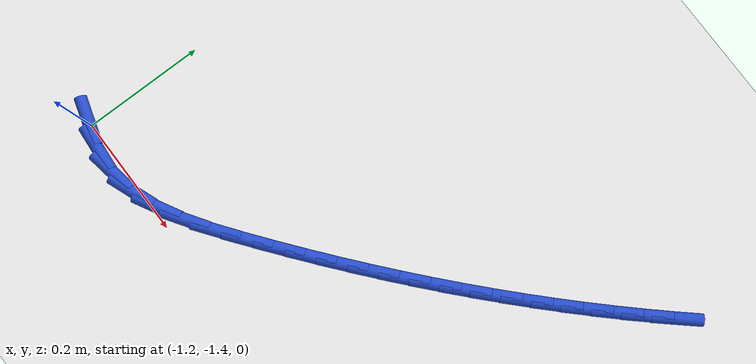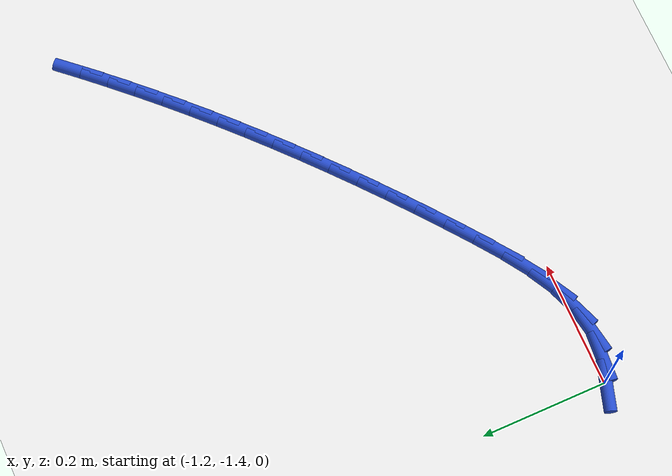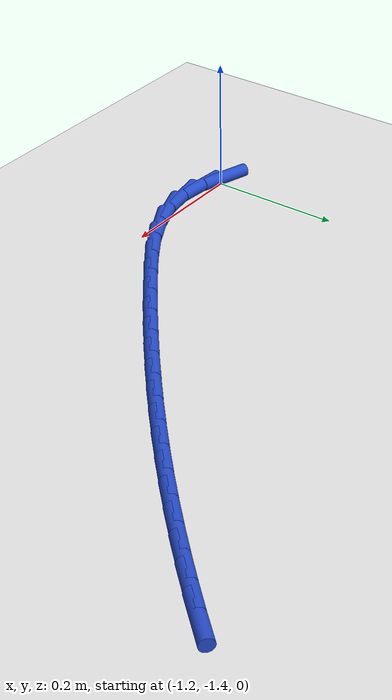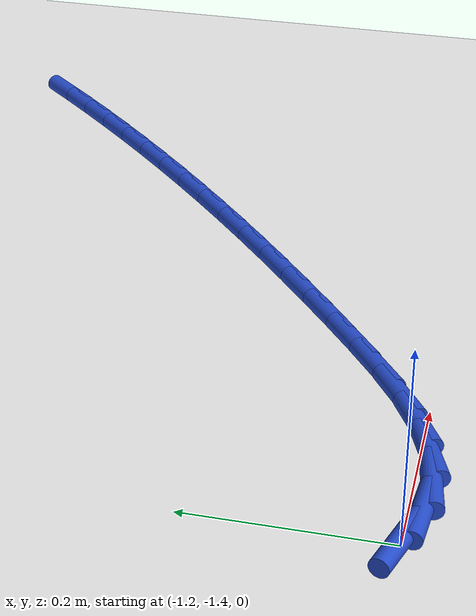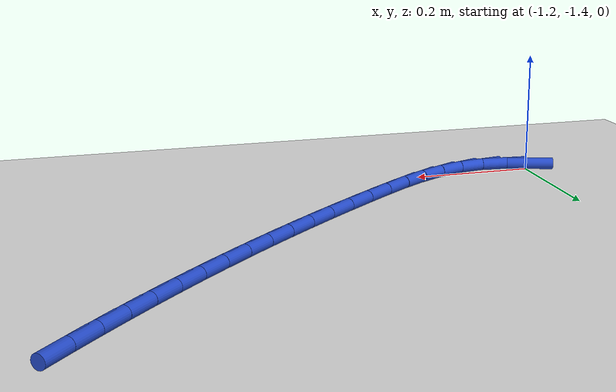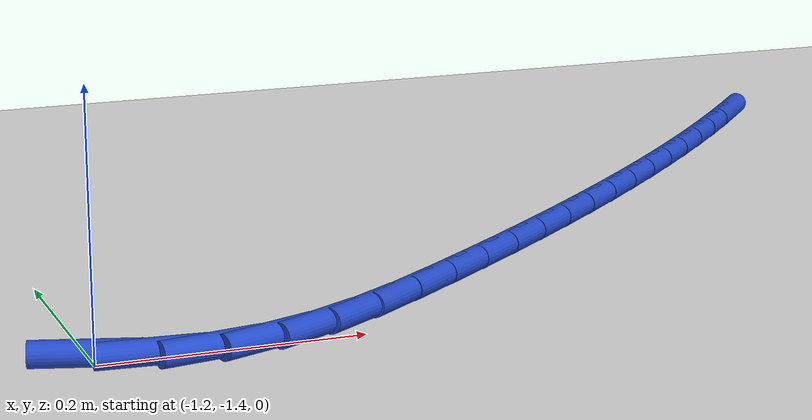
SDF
<sdf version="1.6">
 <world name="default">
  <model name="ground_plane">
   <static>1</static>
   <link name="link">
    <collision name="collision">
     <geometry><plane><normal>0 0 1</normal><size>100 100</size></plane></geometry>
     <surface><friction><ode><mu>100</mu><mu2>50</mu2></ode></friction></surface>
    </collision>
    <visual name="visual">
     <cast_shadows>0</cast_shadows>
     <geometry><plane><normal>0 0 1</normal><size>100 100</size></plane></geometry>
     <material>
      <script><uri>file://media/materials/scripts/gazebo.material</uri><name>Gazebo/WhiteGlow</name></script>
     </material>
    </visual>
   </link>
  </model>
  <model name="line">
   <link name="link_128">
    <pose>-1.2063194516684232 -1.3986927714140123 0.01 0 1.57 -0.2985976994086121</pose>
    <collision name="collision">
     <geometry><cylinder><radius>0.01</radius><length>0.08</length></cylinder></geometry>
    </collision>
    <visual name="visual">
     <material>
      <script><name>Gazebo/Blue</name><uri>file://media/materials/scripts/gazebo.material</uri></script>
     </material>
     <geometry><cylinder><radius>0.01</radius><length>0.08</length></cylinder></geometry>
    </visual>
   </link>
   <link name="link_129">
    <pose>-1.1631027434098096 -1.411994892781941 0.01 0 1.57 -0.08010083303607836</pose>
    <collision name="collision">
     <geometry><cylinder><radius>0.01</radius><length>0.08</length></cylinder></geometry>
    </collision>
    <visual name="visual">
     <material>
      <script><name>Gazebo/Blue</name><uri>file://media/materials/scripts/gazebo.material</uri></script>
     </material>
     <geometry><cylinder><radius>0.01</radius><length>0.08</length></cylinder></geometry>
    </visual>
   </link>
   <link name="link_130">
    <pose>-1.1197835836851573 -1.4154722337849648 0.01 0 1.57 0.16618923246896103</pose>
    <collision name="collision">
     <geometry><cylinder><radius>0.01</radius><length>0.08</length></cylinder></geometry>
    </collision>
    <visual name="visual">
     <material>
      <script><name>Gazebo/Blue</name><uri>file://media/materials/scripts/gazebo.material</uri></script>
     </material>
     <geometry><cylinder><radius>0.01</radius><length>0.08</length></cylinder></geometry>
    </visual>
   </link>
   <link name="link_131">
    <pose>-1.076643291467647 -1.408236040273324 0.01 0 1.57 0.36203216726353477</pose>
    <collision name="collision">
     <geometry><cylinder><radius>0.01</radius><length>0.08</length></cylinder></geometry>
    </collision>
    <visual name="visual">
     <material>
      <script><name>Gazebo/Blue</name><uri>file://media/materials/scripts/gazebo.material</uri></script>
     </material>
     <geometry><cylinder><radius>0.01</radius><length>0.08</length></cylinder></geometry>
    </visual>
   </link>
   <link name="link_132">
    <pose>-1.0338412990919295 -1.3920258679621225 0.01 0 1.57 0.4987111090238055</pose>
    <collision name="collision">
     <geometry><cylinder><radius>0.01</radius><length>0.08</length></cylinder></geometry>
    </collision>
    <visual name="visual">
     <material>
      <script><name>Gazebo/Blue</name><uri>file://media/materials/scripts/gazebo.material</uri></script>
     </material>
     <geometry><cylinder><radius>0.01</radius><length>0.08</length></cylinder></geometry>
    </visual>
   </link>
   <link name="link_133">
    <pose>-0.9915187460573546 -1.368975731221215 0.01 0 1.57 0.5872513612123003</pose>
    <collision name="collision">
     <geometry><cylinder><radius>0.01</radius><length>0.08</length></cylinder></geometry>
    </collision>
    <visual name="visual">
     <material>
      <script><name>Gazebo/Blue</name><uri>file://media/materials/scripts/gazebo.material</uri></script>
     </material>
     <geometry><cylinder><radius>0.01</radius><length>0.08</length></cylinder></geometry>
    </visual>
   </link>
   <link name="link_134">
    <pose>-0.9498167718632743 -1.3412196444204596 0.01 0 1.57 0.6375788750947389</pose>
    <collision name="collision">
     <geometry><cylinder><radius>0.01</radius><length>0.08</length></cylinder></geometry>
    </collision>
    <visual name="visual">
     <material>
      <script><name>Gazebo/Blue</name><uri>file://media/materials/scripts/gazebo.material</uri></script>
     </material>
     <geometry><cylinder><radius>0.01</radius><length>0.08</length></cylinder></geometry>
    </visual>
   </link>
   <link name="link_135">
    <pose>-0.9088765160090403 -1.310891621929714 0.01 0 1.57 0.6579532755748057</pose>
    <collision name="collision">
     <geometry><cylinder><radius>0.01</radius><length>0.08</length></cylinder></geometry>
    </collision>
    <visual name="visual">
     <material>
      <script><name>Gazebo/Blue</name><uri>file://media/materials/scripts/gazebo.material</uri></script>
     </material>
     <geometry><cylinder><radius>0.01</radius><length>0.08</length></cylinder></geometry>
    </visual>
   </link>
   <link name="link_136">
    <pose>-0.868824025343865 -1.2799378330012043 0.01 0 1.57 0.6697754061425137</pose>
    <collision name="collision">
     <geometry><cylinder><radius>0.01</radius><length>0.08</length></cylinder></geometry>
    </collision>
    <visual name="visual">
     <material>
      <script><name>Gazebo/Blue</name><uri>file://media/materials/scripts/gazebo.material</uri></script>
     </material>
     <geometry><cylinder><radius>0.01</radius><length>0.08</length></cylinder></geometry>
    </visual>
   </link>
   <link name="link_137">
    <pose>-0.8296754381316586 -1.2489365101135244 0.01 0 1.57 0.681933374763024</pose>
    <collision name="collision">
     <geometry><cylinder><radius>0.01</radius><length>0.08</length></cylinder></geometry>
    </collision>
    <visual name="visual">
     <material>
      <script><name>Gazebo/Blue</name><uri>file://media/materials/scripts/gazebo.material</uri></script>
     </material>
     <geometry><cylinder><radius>0.01</radius><length>0.08</length></cylinder></geometry>
    </visual>
   </link>
   <link name="link_138">
    <pose>-0.7913982640721389 -1.2178606482106302 0.01 0 1.57 0.6944445810849753</pose>
    <collision name="collision">
     <geometry><cylinder><radius>0.01</radius><length>0.08</length></cylinder></geometry>
    </collision>
    <visual name="visual">
     <material>
      <script><name>Gazebo/Blue</name><uri>file://media/materials/scripts/gazebo.material</uri></script>
     </material>
     <geometry><cylinder><radius>0.01</radius><length>0.08</length></cylinder></geometry>
    </visual>
   </link>
   <link name="link_139">
    <pose>-0.7539597967240572 -1.1866805521174533 0.01 0 1.57 0.707283466453271</pose>
    <collision name="collision">
     <geometry><cylinder><radius>0.01</radius><length>0.08</length></cylinder></geometry>
    </collision>
    <visual name="visual">
     <material>
      <script><name>Gazebo/Blue</name><uri>file://media/materials/scripts/gazebo.material</uri></script>
     </material>
     <geometry><cylinder><radius>0.01</radius><length>0.08</length></cylinder></geometry>
    </visual>
   </link>
   <link name="link_140">
    <pose>-0.7173273296461656 -1.1553665266589257 0.01 0 1.57 0.7204210083414884</pose>
    <collision name="collision">
     <geometry><cylinder><radius>0.01</radius><length>0.08</length></cylinder></geometry>
    </collision>
    <visual name="visual">
     <material>
      <script><name>Gazebo/Blue</name><uri>file://media/materials/scripts/gazebo.material</uri></script>
     </material>
     <geometry><cylinder><radius>0.01</radius><length>0.08</length></cylinder></geometry>
    </visual>
   </link>
   <link name="link_141">
    <pose>-0.6814681563972161 -1.1238888766599793 0.01 0 1.57 0.7338248461264558</pose>
    <collision name="collision">
     <geometry><cylinder><radius>0.01</radius><length>0.08</length></cylinder></geometry>
    </collision>
    <visual name="visual">
     <material>
      <script><name>Gazebo/Blue</name><uri>file://media/materials/scripts/gazebo.material</uri></script>
     </material>
     <geometry><cylinder><radius>0.01</radius><length>0.08</length></cylinder></geometry>
    </visual>
   </link>
   <link name="link_142">
    <pose>-0.6463495705359593 -1.0922179069455453 0.01 0 1.57 0.7474594785639149</pose>
    <collision name="collision">
     <geometry><cylinder><radius>0.01</radius><length>0.08</length></cylinder></geometry>
    </collision>
    <visual name="visual">
     <material>
      <script><name>Gazebo/Blue</name><uri>file://media/materials/scripts/gazebo.material</uri></script>
     </material>
     <geometry><cylinder><radius>0.01</radius><length>0.08</length></cylinder></geometry>
    </visual>
   </link>
   <link name="link_143">
    <pose>-0.6119388656211487 -1.0603239223405563 0.01 0 1.57 0.7612865335263183</pose>
    <collision name="collision">
     <geometry><cylinder><radius>0.01</radius><length>0.08</length></cylinder></geometry>
    </collision>
    <visual name="visual">
     <material>
      <script><name>Gazebo/Blue</name><uri>file://media/materials/scripts/gazebo.material</uri></script>
     </material>
     <geometry><cylinder><radius>0.01</radius><length>0.08</length></cylinder></geometry>
    </visual>
   </link>
   <link name="link_144">
    <pose>-0.5782033352115352 -1.028177227669944 0.01 0 1.57 0.7752651078575166</pose>
    <collision name="collision">
     <geometry><cylinder><radius>0.01</radius><length>0.08</length></cylinder></geometry>
    </collision>
    <visual name="visual">
     <material>
      <script><name>Gazebo/Blue</name><uri>file://media/materials/scripts/gazebo.material</uri></script>
     </material>
     <geometry><cylinder><radius>0.01</radius><length>0.08</length></cylinder></geometry>
    </visual>
   </link>
   <link name="link_145">
    <pose>-0.5451102728658708 -0.9957481277586399 0.01 0 1.57 0.7893521723347339</pose>
    <collision name="collision">
     <geometry><cylinder><radius>0.01</radius><length>0.08</length></cylinder></geometry>
    </collision>
    <visual name="visual">
     <material>
      <script><name>Gazebo/Blue</name><uri>file://media/materials/scripts/gazebo.material</uri></script>
     </material>
     <geometry><cylinder><radius>0.01</radius><length>0.08</length></cylinder></geometry>
    </visual>
   </link>
   <link name="link_146">
    <pose>-0.5126269721429071 -0.9630069274315761 0.01 0 1.57 0.8035030338793583</pose>
    <collision name="collision">
     <geometry><cylinder><radius>0.01</radius><length>0.08</length></cylinder></geometry>
    </collision>
    <visual name="visual">
     <material>
      <script><name>Gazebo/Blue</name><uri>file://media/materials/scripts/gazebo.material</uri></script>
     </material>
     <geometry><cylinder><radius>0.01</radius><length>0.08</length></cylinder></geometry>
    </visual>
   </link>
   <link name="link_147">
    <pose>-0.48072072660139525 -0.9299239315136834 0.01 0 1.57 0.8176718445097461</pose>
    <collision name="collision">
     <geometry><cylinder><radius>0.01</radius><length>0.08</length></cylinder></geometry>
    </collision>
    <visual name="visual">
     <material>
      <script><name>Gazebo/Blue</name><uri>file://media/materials/scripts/gazebo.material</uri></script>
     </material>
     <geometry><cylinder><radius>0.01</radius><length>0.08</length></cylinder></geometry>
    </visual>
   </link>
   <link name="link_148">
    <pose>-0.44935882980008834 -0.8964694448298951 0.01 0 1.57 0.8318121442711601</pose>
    <collision name="collision">
     <geometry><cylinder><radius>0.01</radius><length>0.08</length></cylinder></geometry>
    </collision>
    <visual name="visual">
     <material>
      <script><name>Gazebo/Blue</name><uri>file://media/materials/scripts/gazebo.material</uri></script>
     </material>
     <geometry><cylinder><radius>0.01</radius><length>0.08</length></cylinder></geometry>
    </visual>
   </link>
   <link name="link_149">
    <pose>-0.41850857529773755 -0.8626137722051427 0.01 0 1.57 0.8458774236773298</pose>
    <collision name="collision">
     <geometry><cylinder><radius>0.01</radius><length>0.08</length></cylinder></geometry>
    </collision>
    <visual name="visual">
     <material>
      <script><name>Gazebo/Blue</name><uri>file://media/materials/scripts/gazebo.material</uri></script>
     </material>
     <geometry><cylinder><radius>0.01</radius><length>0.08</length></cylinder></geometry>
    </visual>
   </link>
  </model>
 </world>
</sdf>
